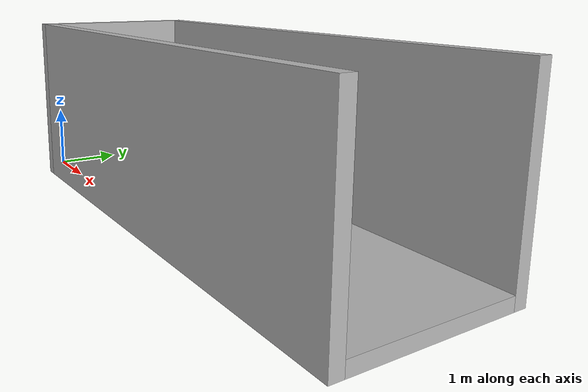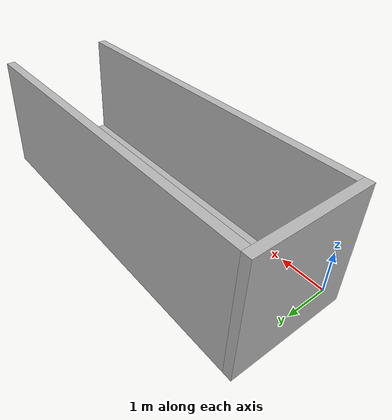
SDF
<?xml version="1.0"?>
<sdf version="1.7">
  <model name="truck">
    <static>1</static>
    <!-- truck inner size 8.0 x 2.42 x 2.6 -->
    <link name="bottom_wall">
      <pose>4.0 1.21 -0.1 0 0 0</pose>
      <visual name="wall">
        <geometry>
          <box>
            <size>8.0 2.42 0.2</size>
          </box>
        </geometry>
      </visual>
      <collision name="wall">
        <geometry>
          <box>
            <size>8.0 2.42 0.2</size>
          </box>
        </geometry>
        <drake:proximity_properties>
          <drake:compliant_hydroelastic/>
          <drake:hydroelastic_modulus> 3.0e4 </drake:hydroelastic_modulus>
          <drake:mesh_resolution_hint> 1.0 </drake:mesh_resolution_hint>
          <drake:mu_dynamic> 0.3 </drake:mu_dynamic>
          <drake:mu_static> 0.3 </drake:mu_static>
          <drake:hunt_crossley_dissipation>
            3.0
          </drake:hunt_crossley_dissipation>
        </drake:proximity_properties>
      </collision>
    </link>
    <link name="left_wall">
      <pose>4.0 -0.1 1.2 0 0 0</pose>
      <visual name="wall">
        <geometry>
          <box>
            <size>8.0 0.2 2.8</size>
          </box>
        </geometry>
      </visual>
      <collision name="wall">
        <geometry>
          <box>
            <size>8.0 0.2 2.8</size>
          </box>
        </geometry>
        <drake:proximity_properties>
          <drake:compliant_hydroelastic/>
          <drake:hydroelastic_modulus> 3.0e4 </drake:hydroelastic_modulus>
          <drake:mesh_resolution_hint> 1.0 </drake:mesh_resolution_hint>
          <drake:mu_dynamic> 0.3 </drake:mu_dynamic>
          <drake:mu_static> 0.3 </drake:mu_static>
          <drake:hunt_crossley_dissipation>
            3.0
          </drake:hunt_crossley_dissipation>
        </drake:proximity_properties>
      </collision>
    </link>
    <link name="right_wall">
      <pose>4.0 2.52 1.2 0 0 0</pose>
      <visual name="wall">
        <geometry>
          <box>
            <size>8.0 0.2 2.8</size>
          </box>
        </geometry>
      </visual>
      <collision name="wall">
        <geometry>
          <box>
            <size>8.0 0.2 2.8</size>
          </box>
        </geometry>
        <drake:proximity_properties>
          <drake:compliant_hydroelastic/>
          <drake:hydroelastic_modulus> 3.0e4 </drake:hydroelastic_modulus>
          <drake:mesh_resolution_hint> 1.0 </drake:mesh_resolution_hint>
          <drake:mu_dynamic> 0.3 </drake:mu_dynamic>
          <drake:mu_static> 0.3 </drake:mu_static>
          <drake:hunt_crossley_dissipation>
            3.0
          </drake:hunt_crossley_dissipation>
        </drake:proximity_properties>
      </collision>
    </link>
    <link name="back_wall">
      <pose>-0.1 1.21 1.2 0 0 0</pose>
      <visual name="wall">
        <geometry>
          <box>
            <size>0.2 2.82 2.8</size>
          </box>
        </geometry>
      </visual>
      <collision name="wall">
        <geometry>
          <box>
            <size>0.2 2.82 2.8</size>
          </box>
        </geometry>
        <drake:proximity_properties>
          <drake:compliant_hydroelastic/>
          <drake:hydroelastic_modulus> 3.0e4 </drake:hydroelastic_modulus>
          <drake:mesh_resolution_hint> 1.0 </drake:mesh_resolution_hint>
          <drake:mu_dynamic> 0.3 </drake:mu_dynamic>
          <drake:mu_static> 0.3 </drake:mu_static>
          <drake:hunt_crossley_dissipation>
            3.0
          </drake:hunt_crossley_dissipation>
        </drake:proximity_properties>
      </collision>
    </link>
  </model>
</sdf>
